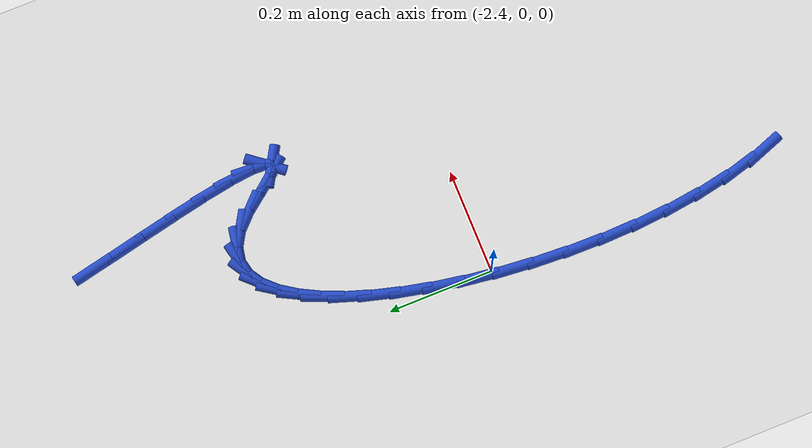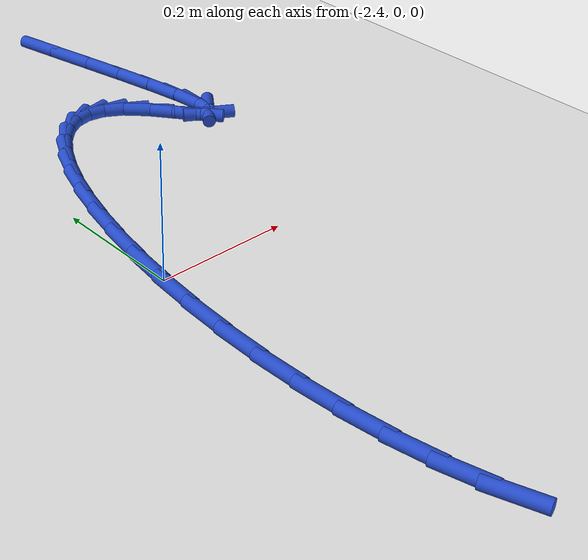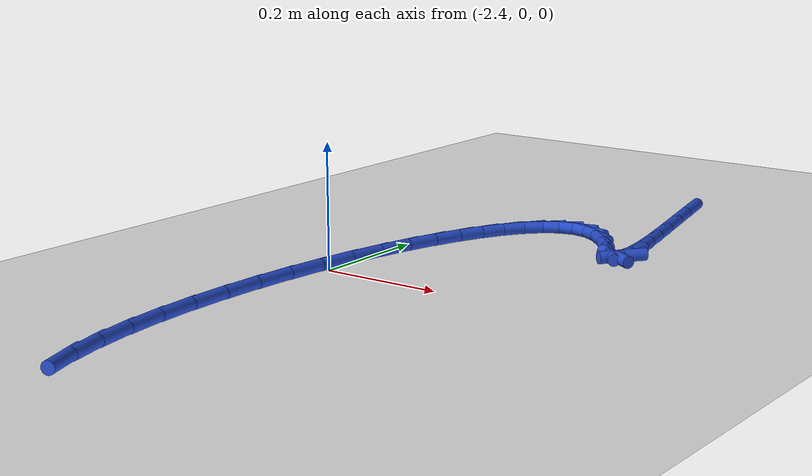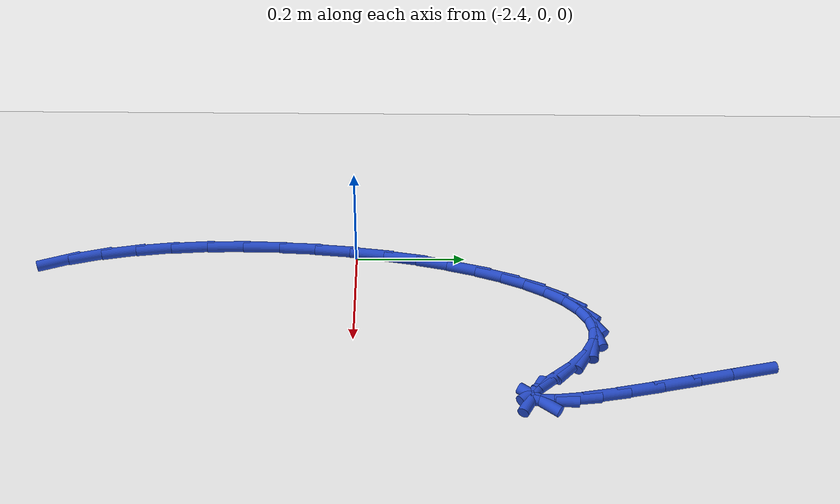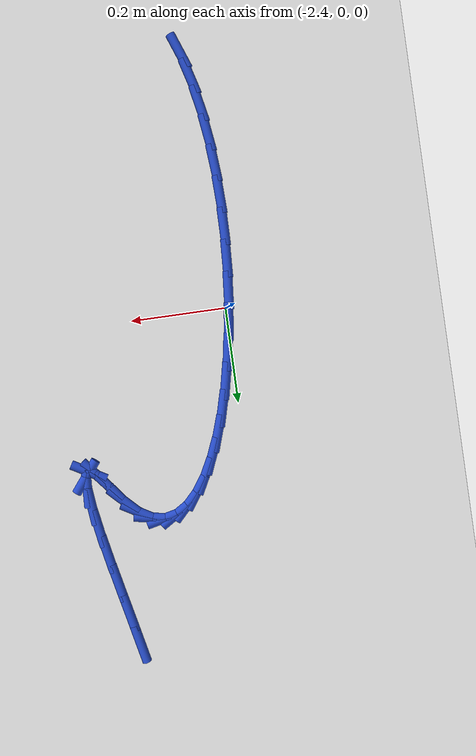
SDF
<sdf version="1.6">
 <world name="default">
  <model name="ground_plane">
   <static>1</static>
   <link name="link">
    <collision name="collision">
     <geometry><plane><normal>0 0 1</normal><size>100 100</size></plane></geometry>
     <surface><friction><ode><mu>100</mu><mu2>50</mu2></ode></friction></surface>
    </collision>
    <visual name="visual">
     <cast_shadows>0</cast_shadows>
     <geometry><plane><normal>0 0 1</normal><size>100 100</size></plane></geometry>
     <material>
      <script><uri>file://media/materials/scripts/gazebo.material</uri><name>Gazebo/WhiteGlow</name></script>
     </material>
    </visual>
   </link>
  </model>
  <model name="line">
   <link name="link_84">
    <pose>-2.1267545094928044 0.6721067301180722 0.01 0 1.57 -1.3568659263473555</pose>
    <collision name="collision">
     <geometry><cylinder><radius>0.01</radius><length>0.08</length></cylinder></geometry>
    </collision>
    <visual name="visual">
     <material>
      <script><name>Gazebo/Blue</name><uri>file://media/materials/scripts/gazebo.material</uri></script>
     </material>
     <geometry><cylinder><radius>0.01</radius><length>0.08</length></cylinder></geometry>
    </visual>
   </link>
   <link name="link_85">
    <pose>-2.1121145235780014 0.6047205028434068 0.01 0 1.57 -1.3539839816472419</pose>
    <collision name="collision">
     <geometry><cylinder><radius>0.01</radius><length>0.08</length></cylinder></geometry>
    </collision>
    <visual name="visual">
     <material>
      <script><name>Gazebo/Blue</name><uri>file://media/materials/scripts/gazebo.material</uri></script>
     </material>
     <geometry><cylinder><radius>0.01</radius><length>0.08</length></cylinder></geometry>
    </visual>
   </link>
   <link name="link_86">
    <pose>-2.0975720730977248 0.5387009013125815 0.01 0 1.57 -1.3585361756614416</pose>
    <collision name="collision">
     <geometry><cylinder><radius>0.01</radius><length>0.08</length></cylinder></geometry>
    </collision>
    <visual name="visual">
     <material>
      <script><name>Gazebo/Blue</name><uri>file://media/materials/scripts/gazebo.material</uri></script>
     </material>
     <geometry><cylinder><radius>0.01</radius><length>0.08</length></cylinder></geometry>
    </visual>
   </link>
   <link name="link_87">
    <pose>-2.084136714433913 0.47635770572678576 0.01 0 1.57 -1.3725937392971808</pose>
    <collision name="collision">
     <geometry><cylinder><radius>0.01</radius><length>0.08</length></cylinder></geometry>
    </collision>
    <visual name="visual">
     <material>
      <script><name>Gazebo/Blue</name><uri>file://media/materials/scripts/gazebo.material</uri></script>
     </material>
     <geometry><cylinder><radius>0.01</radius><length>0.08</length></cylinder></geometry>
    </visual>
   </link>
   <link name="link_88">
    <pose>-2.072818003968503 0.4200006962872085 0.01 0 1.57 -1.4019587101649076</pose>
    <collision name="collision">
     <geometry><cylinder><radius>0.01</radius><length>0.08</length></cylinder></geometry>
    </collision>
    <visual name="visual">
     <material>
      <script><name>Gazebo/Blue</name><uri>file://media/materials/scripts/gazebo.material</uri></script>
     </material>
     <geometry><cylinder><radius>0.01</radius><length>0.08</length></cylinder></geometry>
    </visual>
   </link>
   <link name="link_89">
    <pose>-2.0646254980834335 0.3719396531950386 0.01 0 1.57 -1.4629079099699307</pose>
    <collision name="collision">
     <geometry><cylinder><radius>0.01</radius><length>0.08</length></cylinder></geometry>
    </collision>
    <visual name="visual">
     <material>
      <script><name>Gazebo/Blue</name><uri>file://media/materials/scripts/gazebo.material</uri></script>
     </material>
     <geometry><cylinder><radius>0.01</radius><length>0.08</length></cylinder></geometry>
    </visual>
   </link>
   <link name="link_90">
    <pose>-2.0605687531606436 0.3344843566514649 0.01 0 1.57 1.5264658683833148</pose>
    <collision name="collision">
     <geometry><cylinder><radius>0.01</radius><length>0.08</length></cylinder></geometry>
    </collision>
    <visual name="visual">
     <material>
      <script><name>Gazebo/Blue</name><uri>file://media/materials/scripts/gazebo.material</uri></script>
     </material>
     <geometry><cylinder><radius>0.01</radius><length>0.08</length></cylinder></geometry>
    </visual>
   </link>
   <link name="link_91">
    <pose>-2.0616573255820705 0.3099445868576768 0.01 0 1.57 0.9098291576878177</pose>
    <collision name="collision">
     <geometry><cylinder><radius>0.01</radius><length>0.08</length></cylinder></geometry>
    </collision>
    <visual name="visual">
     <material>
      <script><name>Gazebo/Blue</name><uri>file://media/materials/scripts/gazebo.material</uri></script>
     </material>
     <geometry><cylinder><radius>0.01</radius><length>0.08</length></cylinder></geometry>
    </visual>
   </link>
   <link name="link_92">
    <pose>-2.0689007717296524 0.3006301240148628 0.01 0 1.57 -0.518494578517523</pose>
    <collision name="collision">
     <geometry><cylinder><radius>0.01</radius><length>0.08</length></cylinder></geometry>
    </collision>
    <visual name="visual">
     <material>
      <script><name>Gazebo/Blue</name><uri>file://media/materials/scripts/gazebo.material</uri></script>
     </material>
     <geometry><cylinder><radius>0.01</radius><length>0.08</length></cylinder></geometry>
    </visual>
   </link>
   <link name="link_93">
    <pose>-2.0833086479853278 0.3088507483242122 0.01 0 1.57 -0.8775458179487281</pose>
    <collision name="collision">
     <geometry><cylinder><radius>0.01</radius><length>0.08</length></cylinder></geometry>
    </collision>
    <visual name="visual">
     <material>
      <script><name>Gazebo/Blue</name><uri>file://media/materials/scripts/gazebo.material</uri></script>
     </material>
     <geometry><cylinder><radius>0.01</radius><length>0.08</length></cylinder></geometry>
    </visual>
   </link>
   <link name="link_94">
    <pose>-2.1054850334522075 0.33554305858347855 0.01 0 1.57 -0.9063865168456847</pose>
    <collision name="collision">
     <geometry><cylinder><radius>0.01</radius><length>0.08</length></cylinder></geometry>
    </collision>
    <visual name="visual">
     <material>
      <script><name>Gazebo/Blue</name><uri>file://media/materials/scripts/gazebo.material</uri></script>
     </material>
     <geometry><cylinder><radius>0.01</radius><length>0.08</length></cylinder></geometry>
    </visual>
   </link>
   <link name="link_95">
    <pose>-2.132671051228511 0.3702547327121631 0.01 0 1.57 -0.7794970612691872</pose>
    <collision name="collision">
     <geometry><cylinder><radius>0.01</radius><length>0.08</length></cylinder></geometry>
    </collision>
    <visual name="visual">
     <material>
      <script><name>Gazebo/Blue</name><uri>file://media/materials/scripts/gazebo.material</uri></script>
     </material>
     <geometry><cylinder><radius>0.01</radius><length>0.08</length></cylinder></geometry>
    </visual>
   </link>
   <link name="link_96">
    <pose>-2.160716677662607 0.3979712969445867 0.01 0 1.57 -0.525284986809921</pose>
    <collision name="collision">
     <geometry><cylinder><radius>0.01</radius><length>0.08</length></cylinder></geometry>
    </collision>
    <visual name="visual">
     <material>
      <script><name>Gazebo/Blue</name><uri>file://media/materials/scripts/gazebo.material</uri></script>
     </material>
     <geometry><cylinder><radius>0.01</radius><length>0.08</length></cylinder></geometry>
    </visual>
   </link>
   <link name="link_97">
    <pose>-2.188046147815641 0.41381147817438724 0.01 0 1.57 -0.17584275071943625</pose>
    <collision name="collision">
     <geometry><cylinder><radius>0.01</radius><length>0.08</length></cylinder></geometry>
    </collision>
    <visual name="visual">
     <material>
      <script><name>Gazebo/Blue</name><uri>file://media/materials/scripts/gazebo.material</uri></script>
     </material>
     <geometry><cylinder><radius>0.01</radius><length>0.08</length></cylinder></geometry>
    </visual>
   </link>
   <link name="link_98">
    <pose>-2.2145123075789592 0.4185139283548314 0.01 0 1.57 0.21782074277734317</pose>
    <collision name="collision">
     <geometry><cylinder><radius>0.01</radius><length>0.08</length></cylinder></geometry>
    </collision>
    <visual name="visual">
     <material>
      <script><name>Gazebo/Blue</name><uri>file://media/materials/scripts/gazebo.material</uri></script>
     </material>
     <geometry><cylinder><radius>0.01</radius><length>0.08</length></cylinder></geometry>
    </visual>
   </link>
   <link name="link_99">
    <pose>-2.239983035035692 0.4128764336621071 0.01 0 1.57 0.5575697735552572</pose>
    <collision name="collision">
     <geometry><cylinder><radius>0.01</radius><length>0.08</length></cylinder></geometry>
    </collision>
    <visual name="visual">
     <material>
      <script><name>Gazebo/Blue</name><uri>file://media/materials/scripts/gazebo.material</uri></script>
     </material>
     <geometry><cylinder><radius>0.01</radius><length>0.08</length></cylinder></geometry>
    </visual>
   </link>
   <link name="link_100">
    <pose>-2.264326208268972 0.39769678027240235 0.01 0 1.57 0.8032769879541777</pose>
    <collision name="collision">
     <geometry><cylinder><radius>0.01</radius><length>0.08</length></cylinder></geometry>
    </collision>
    <visual name="visual">
     <material>
      <script><name>Gazebo/Blue</name><uri>file://media/materials/scripts/gazebo.material</uri></script>
     </material>
     <geometry><cylinder><radius>0.01</radius><length>0.08</length></cylinder></geometry>
    </visual>
   </link>
   <link name="link_101">
    <pose>-2.2874097053619264 0.37377275436190527 0.01 0 1.57 0.9731974831034321</pose>
    <collision name="collision">
     <geometry><cylinder><radius>0.01</radius><length>0.08</length></cylinder></geometry>
    </collision>
    <visual name="visual">
     <material>
      <script><name>Gazebo/Blue</name><uri>file://media/materials/scripts/gazebo.material</uri></script>
     </material>
     <geometry><cylinder><radius>0.01</radius><length>0.08</length></cylinder></geometry>
    </visual>
   </link>
   <link name="link_102">
    <pose>-2.309101404397687 0.34190214210680364 0.01 0 1.57 1.0937477156306694</pose>
    <collision name="collision">
     <geometry><cylinder><radius>0.01</radius><length>0.08</length></cylinder></geometry>
    </collision>
    <visual name="visual">
     <material>
      <script><name>Gazebo/Blue</name><uri>file://media/materials/scripts/gazebo.material</uri></script>
     </material>
     <geometry><cylinder><radius>0.01</radius><length>0.08</length></cylinder></geometry>
    </visual>
   </link>
   <link name="link_103">
    <pose>-2.3292691834593846 0.30288272968328556 0.01 0 1.57 1.183401081511278</pose>
    <collision name="collision">
     <geometry><cylinder><radius>0.01</radius><length>0.08</length></cylinder></geometry>
    </collision>
    <visual name="visual">
     <material>
      <script><name>Gazebo/Blue</name><uri>file://media/materials/scripts/gazebo.material</uri></script>
     </material>
     <geometry><cylinder><radius>0.01</radius><length>0.08</length></cylinder></geometry>
    </visual>
   </link>
   <link name="link_104">
    <pose>-2.347780920630149 0.25751230326753916 0.01 0 1.57 1.2534879757153092</pose>
    <collision name="collision">
     <geometry><cylinder><radius>0.01</radius><length>0.08</length></cylinder></geometry>
    </collision>
    <visual name="visual">
     <material>
      <script><name>Gazebo/Blue</name><uri>file://media/materials/scripts/gazebo.material</uri></script>
     </material>
     <geometry><cylinder><radius>0.01</radius><length>0.08</length></cylinder></geometry>
    </visual>
   </link>
   <link name="link_105">
    <pose>-2.3645044939931115 0.20658864903575236 0.01 0 1.57 1.3109397636425193</pose>
    <collision name="collision">
     <geometry><cylinder><radius>0.01</radius><length>0.08</length></cylinder></geometry>
    </collision>
    <visual name="visual">
     <material>
      <script><name>Gazebo/Blue</name><uri>file://media/materials/scripts/gazebo.material</uri></script>
     </material>
     <geometry><cylinder><radius>0.01</radius><length>0.08</length></cylinder></geometry>
    </visual>
   </link>
   <link name="link_106">
    <pose>-2.379307781631401 0.1509095531641132 0.01 0 1.57 1.3601587299336535</pose>
    <collision name="collision">
     <geometry><cylinder><radius>0.01</radius><length>0.08</length></cylinder></geometry>
    </collision>
    <visual name="visual">
     <material>
      <script><name>Gazebo/Blue</name><uri>file://media/materials/scripts/gazebo.material</uri></script>
     </material>
     <geometry><cylinder><radius>0.01</radius><length>0.08</length></cylinder></geometry>
    </visual>
   </link>
   <link name="link_107">
    <pose>-2.3920586616281496 0.09127280182880972 0.01 0 1.57 1.404094822169935</pose>
    <collision name="collision">
     <geometry><cylinder><radius>0.01</radius><length>0.08</length></cylinder></geometry>
    </collision>
    <visual name="visual">
     <material>
      <script><name>Gazebo/Blue</name><uri>file://media/materials/scripts/gazebo.material</uri></script>
     </material>
     <geometry><cylinder><radius>0.01</radius><length>0.08</length></cylinder></geometry>
    </visual>
   </link>
   <link name="link_108">
    <pose>-2.4026250120664865 0.028476181206029585 0.01 0 1.57 1.44485708928877</pose>
    <collision name="collision">
     <geometry><cylinder><radius>0.01</radius><length>0.08</length></cylinder></geometry>
    </collision>
    <visual name="visual">
     <material>
      <script><name>Gazebo/Blue</name><uri>file://media/materials/scripts/gazebo.material</uri></script>
     </material>
     <geometry><cylinder><radius>0.01</radius><length>0.08</length></cylinder></geometry>
    </visual>
   </link>
   <link name="link_109">
    <pose>-2.410874711029542 -0.03668252252803871 0.01 0 1.57 1.4840739709892858</pose>
    <collision name="collision">
     <geometry><cylinder><radius>0.01</radius><length>0.08</length></cylinder></geometry>
    </collision>
    <visual name="visual">
     <material>
      <script><name>Gazebo/Blue</name><uri>file://media/materials/scripts/gazebo.material</uri></script>
     </material>
     <geometry><cylinder><radius>0.01</radius><length>0.08</length></cylinder></geometry>
    </visual>
   </link>
   <link name="link_110">
    <pose>-2.4166756366004476 -0.10340552319720739 0.01 0 1.57 1.5231209151107854</pose>
    <collision name="collision">
     <geometry><cylinder><radius>0.01</radius><length>0.08</length></cylinder></geometry>
    </collision>
    <visual name="visual">
     <material>
      <script><name>Gazebo/Blue</name><uri>file://media/materials/scripts/gazebo.material</uri></script>
     </material>
     <geometry><cylinder><radius>0.01</radius><length>0.08</length></cylinder></geometry>
    </visual>
   </link>
   <link name="link_111">
    <pose>-2.419895666862332 -0.17089503462528854 0.01 0 1.57 1.5632805137627452</pose>
    <collision name="collision">
     <geometry><cylinder><radius>0.01</radius><length>0.08</length></cylinder></geometry>
    </collision>
    <visual name="visual">
     <material>
      <script><name>Gazebo/Blue</name><uri>file://media/materials/scripts/gazebo.material</uri></script>
     </material>
     <geometry><cylinder><radius>0.01</radius><length>0.08</length></cylinder></geometry>
    </visual>
   </link>
   <link name="link_112">
    <pose>-2.4204026798983276 -0.23835327063609407 0.01 0 1.57 -1.5357190938033172</pose>
    <collision name="collision">
     <geometry><cylinder><radius>0.01</radius><length>0.08</length></cylinder></geometry>
    </collision>
    <visual name="visual">
     <material>
      <script><name>Gazebo/Blue</name><uri>file://media/materials/scripts/gazebo.material</uri></script>
     </material>
     <geometry><cylinder><radius>0.01</radius><length>0.08</length></cylinder></geometry>
    </visual>
   </link>
   <link name="link_113">
    <pose>-2.418064553791564 -0.30498244505343586 0.01 0 1.57 -1.4892056011174424</pose>
    <collision name="collision">
     <geometry><cylinder><radius>0.01</radius><length>0.08</length></cylinder></geometry>
    </collision>
    <visual name="visual">
     <material>
      <script><name>Gazebo/Blue</name><uri>file://media/materials/scripts/gazebo.material</uri></script>
     </material>
     <geometry><cylinder><radius>0.01</radius><length>0.08</length></cylinder></geometry>
    </visual>
   </link>
   <link name="link_114">
    <pose>-2.41274916662517 -0.369984771701126 0.01 0 1.57 -1.4369720084393962</pose>
    <collision name="collision">
     <geometry><cylinder><radius>0.01</radius><length>0.08</length></cylinder></geometry>
    </collision>
    <visual name="visual">
     <material>
      <script><name>Gazebo/Blue</name><uri>file://media/materials/scripts/gazebo.material</uri></script>
     </material>
     <geometry><cylinder><radius>0.01</radius><length>0.08</length></cylinder></geometry>
    </visual>
   </link>
   <link name="link_115">
    <pose>-2.404324396482279 -0.43256246440297663 0.01 0 1.57 -1.3767203262784404</pose>
    <collision name="collision">
     <geometry><cylinder><radius>0.01</radius><length>0.08</length></cylinder></geometry>
    </collision>
    <visual name="visual">
     <material>
      <script><name>Gazebo/Blue</name><uri>file://media/materials/scripts/gazebo.material</uri></script>
     </material>
     <geometry><cylinder><radius>0.01</radius><length>0.08</length></cylinder></geometry>
    </visual>
   </link>
   <link name="link_116">
    <pose>-2.3926581214460194 -0.4919177369827983 0.01 0 1.57 -1.3054104044176853</pose>
    <collision name="collision">
     <geometry><cylinder><radius>0.01</radius><length>0.08</length></cylinder></geometry>
    </collision>
    <visual name="visual">
     <material>
      <script><name>Gazebo/Blue</name><uri>file://media/materials/scripts/gazebo.material</uri></script>
     </material>
     <geometry><cylinder><radius>0.01</radius><length>0.08</length></cylinder></geometry>
    </visual>
   </link>
   <link name="link_117">
    <pose>-2.3776182195995212 -0.5472528032644055 0.01 0 1.57 -1.2189550805692193</pose>
    <collision name="collision">
     <geometry><cylinder><radius>0.01</radius><length>0.08</length></cylinder></geometry>
    </collision>
    <visual name="visual">
     <material>
      <script><name>Gazebo/Blue</name><uri>file://media/materials/scripts/gazebo.material</uri></script>
     </material>
     <geometry><cylinder><radius>0.01</radius><length>0.08</length></cylinder></geometry>
    </visual>
   </link>
  </model>
 </world>
</sdf>
